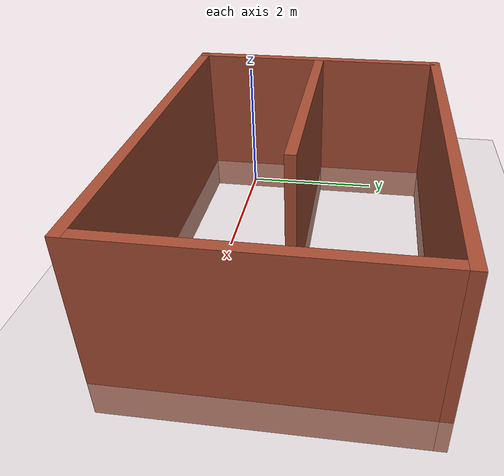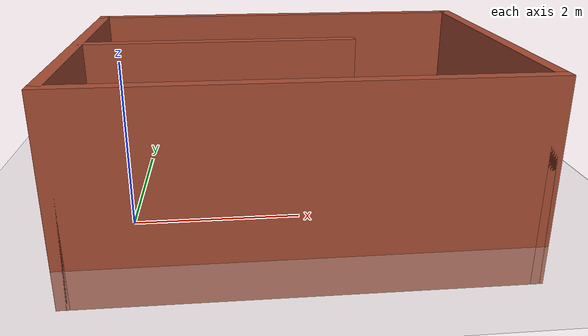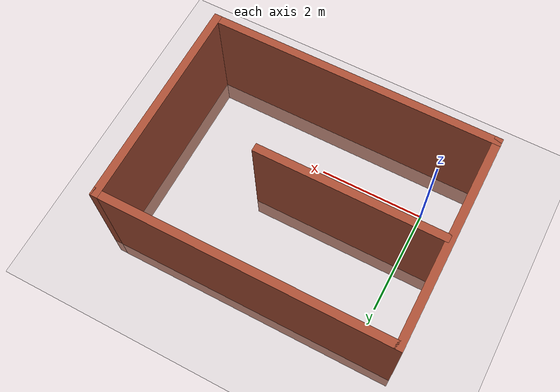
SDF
<sdf version="1.6">
 <world name="default">
  <model name="ground_plane">
   <static>1</static>
   <link name="link">
    <collision name="collision">
     <geometry><plane><normal>0 0 1</normal><size>100 100</size></plane></geometry>
     <surface><friction><ode><mu>100</mu><mu2>50</mu2></ode></friction></surface>
    </collision>
    <visual name="visual">
     <cast_shadows>0</cast_shadows>
     <geometry><plane><normal>0 0 1</normal><size>100 100</size></plane></geometry>
     <material>
      <script><uri>file://media/materials/scripts/gazebo.material</uri><name>Gazebo/Grey</name></script>
     </material>
    </visual>
   </link>
  </model>
  <gravity>0 0 -9.8</gravity>
  <magnetic_field>6e-06 2.3e-05 -4.2e-05</magnetic_field>
  <atmosphere type="adiabatic"/>
  <physics name="default_physics" default="0" type="ode">
   <max_step_size>0.001</max_step_size>
   <real_time_factor>1</real_time_factor>
   <real_time_update_rate>1000</real_time_update_rate>
  </physics>
  <scene><ambient>0.4 0.4 0.4 1</ambient><background>0.7 0.7 0.7 1</background><shadows>1</shadows></scene>
  <spherical_coordinates>
   <surface_model>EARTH_WGS84</surface_model>
   <latitude_deg>0</latitude_deg>
   <longitude_deg>0</longitude_deg>
   <elevation>0</elevation>
   <heading_deg>0</heading_deg>
  </spherical_coordinates>
  <model name="simplemaze_brick">
   <pose>2 1 -0.5 0 -0 0</pose>
   <link name="Wall_26">
    <collision name="Wall_26_Collision">
     <geometry><box><size>5.5 0.15 2.5</size></box></geometry>
     <pose>0 0 1.25 0 -0 0</pose>
    </collision>
    <visual name="Wall_26_Visual">
     <pose>0 0 1.25 0 -0 0</pose>
     <geometry><box><size>5.5 0.15 2.5</size></box></geometry>
     <material>
      <script><uri>file://media/materials/scripts/gazebo.material</uri><name>Gazebo/Bricks</name></script>
      <ambient>1 0.666667 0 1</ambient>
     </material>
     <meta><layer>0</layer></meta>
    </visual>
    <pose>0 -1.925 0 0 -0 0</pose>
   </link>
   <link name="Wall_27">
    <collision name="Wall_27_Collision">
     <geometry><box><size>4 0.15 2.5</size></box></geometry>
     <pose>0 0 1.25 0 -0 0</pose>
    </collision>
    <visual name="Wall_27_Visual">
     <pose>0 0 1.25 0 -0 0</pose>
     <geometry><box><size>4 0.15 2.5</size></box></geometry>
     <material>
      <script><uri>file://media/materials/scripts/gazebo.material</uri><name>Gazebo/Bricks</name></script>
      <ambient>0 1 1 1</ambient>
     </material>
     <meta><layer>0</layer></meta>
    </visual>
    <pose>2.675 0 0 0 -0 1.5708</pose>
   </link>
   <link name="Wall_28">
    <collision name="Wall_28_Collision">
     <geometry><box><size>5.5 0.15 2.5</size></box></geometry>
     <pose>0 0 1.25 0 -0 0</pose>
    </collision>
    <visual name="Wall_28_Visual">
     <pose>0 0 1.25 0 -0 0</pose>
     <geometry><box><size>5.5 0.15 2.5</size></box></geometry>
     <material>
      <script><uri>file://media/materials/scripts/gazebo.material</uri><name>Gazebo/Bricks</name></script>
      <ambient>0.666667 1 1 1</ambient>
     </material>
     <meta><layer>0</layer></meta>
    </visual>
    <pose>0 1.925 0 0 -0 3.14159</pose>
   </link>
   <link name="Wall_29">
    <collision name="Wall_29_Collision">
     <geometry><box><size>4 0.15 2.5</size></box></geometry>
     <pose>0 0 1.25 0 -0 0</pose>
    </collision>
    <visual name="Wall_29_Visual">
     <pose>0 0 1.25 0 -0 0</pose>
     <geometry><box><size>4 0.15 2.5</size></box></geometry>
     <material>
      <script><uri>file://media/materials/scripts/gazebo.material</uri><name>Gazebo/Bricks</name></script>
      <ambient>0 0 1 1</ambient>
     </material>
     <meta><layer>0</layer></meta>
    </visual>
    <pose>-2.675 0 0 0 0 -1.5708</pose>
   </link>
   <link name="Wall_31">
    <collision name="Wall_31_Collision">
     <geometry><box><size>3.5 0.15 2.5</size></box></geometry>
     <pose>0 0 1.25 0 -0 0</pose>
    </collision>
    <visual name="Wall_31_Visual">
     <pose>0 0 1.25 0 -0 0</pose>
     <geometry><box><size>3.5 0.15 2.5</size></box></geometry>
     <material>
      <script><uri>file://media/materials/scripts/gazebo.material</uri><name>Gazebo/Bricks</name></script>
      <ambient>0 0 0 1</ambient>
     </material>
     <meta><layer>0</layer></meta>
    </visual>
    <pose>-0.915278 0.0269 0 0 -0 0</pose>
   </link>
   <static>1</static>
  </model>
  <light name="user_directional_light_0" type="directional">
   <pose>3.90783 -1.6379 1 0 -0 0</pose>
   <diffuse>0.5 0.5 0.5 1</diffuse>
   <specular>0.1 0.1 0.1 1</specular>
   <direction>0.1 0.1 -0.9</direction>
   <attenuation>
    <range>20</range>
    <constant>0.5</constant>
    <linear>0.01</linear>
    <quadratic>0.001</quadratic>
   </attenuation>
  </light>
  <light name="user_directional_light_1" type="directional">
   <pose>-0.459364 2.85573 1 0 -0 0</pose>
   <diffuse>0.5 0.5 0.5 1</diffuse>
   <specular>0.1 0.1 0.1 1</specular>
   <direction>0.1 0.1 -0.9</direction>
   <attenuation>
    <range>20</range>
    <constant>0.5</constant>
    <linear>0.01</linear>
    <quadratic>0.001</quadratic>
   </attenuation>
  </light>
  <light name="user_directional_light_2" type="directional">
   <pose>2.61347 0.531719 1 0 -0 0</pose>
   <diffuse>0.5 0.5 0.5 1</diffuse>
   <specular>0.1 0.1 0.1 1</specular>
   <direction>0.1 0.1 -0.9</direction>
   <attenuation>
    <range>20</range>
    <constant>0.5</constant>
    <linear>0.01</linear>
    <quadratic>0.001</quadratic>
   </attenuation>
  </light>
  <light name="user_directional_light_3" type="directional">
   <pose>3.9654 1.26103 1 0 -0 0</pose>
   <diffuse>0.5 0.5 0.5 1</diffuse>
   <specular>0.1 0.1 0.1 1</specular>
   <direction>0.1 0.1 -0.9</direction>
   <attenuation>
    <range>20</range>
    <constant>0.5</constant>
    <linear>0.01</linear>
    <quadratic>0.001</quadratic>
   </attenuation>
  </light>
  <light name="user_directional_light_4" type="directional">
   <pose>0.626174 -0.47882 1 0 -0 0</pose>
   <diffuse>0.5 0.5 0.5 1</diffuse>
   <specular>0.1 0.1 0.1 1</specular>
   <direction>0.1 0.1 -0.9</direction>
   <attenuation>
    <range>20</range>
    <constant>0.5</constant>
    <linear>0.01</linear>
    <quadratic>0.001</quadratic>
   </attenuation>
  </light>
  <light name="user_directional_light_5" type="directional">
   <pose>1.80056 -0.818277 1 0 -0 0</pose>
   <diffuse>0.5 0.5 0.5 1</diffuse>
   <specular>0.1 0.1 0.1 1</specular>
   <direction>0.1 0.1 -0.9</direction>
   <attenuation>
    <range>20</range>
    <constant>0.5</constant>
    <linear>0.01</linear>
    <quadratic>0.001</quadratic>
   </attenuation>
  </light>
 </world>
</sdf>
